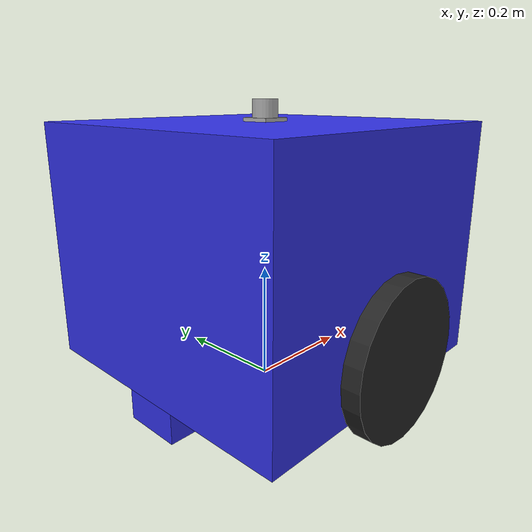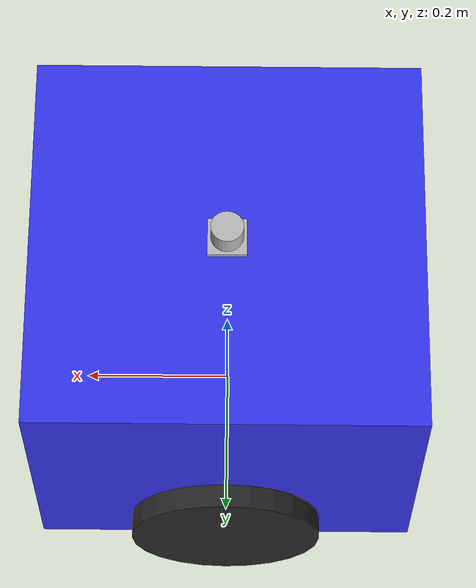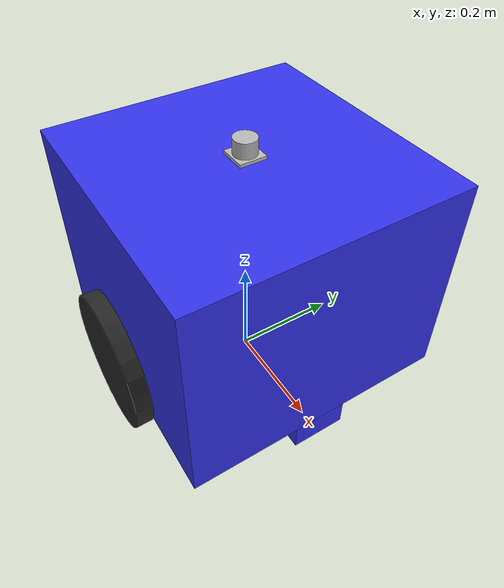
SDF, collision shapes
<?xml version='1.0'?>
<sdf version='1.4'>
  <model name="my_robot">
    <static>false</static>
    <link name='chassis'>
      <pose>0 0 .25 0 0 0</pose>

      <inertial>
        <mass>20</mass>
        <pose>0 0 -0.125 0 0 0</pose>
        <inertia>
          <ixx>0.8</ixx>
          <ixy>0</ixy>
          <ixz>0</ixz>
          <iyy>0.8</iyy>
          <iyz>0</iyz>
          <izz>0.8</izz>
        </inertia>
      </inertial>

      <collision name='collision'>
        <geometry>
          <box>
            <size>.5 .5 .4</size>
          </box>
        </geometry>
      </collision>

      <visual name='visual'>
        <geometry>
          <box>
            <size>.5 .5 .4</size>
          </box>
        </geometry>

        <material>
          <ambient>0.15 0.15 0.85 1</ambient>
          <diffuse>0.2 0.2 0.92 1</diffuse>
          <specular>0.25 0.25 0.97 1</specular>
          <emissive>0.01 0.01 0.01 1</emissive>
        </material>

      </visual>

      <collision name='caster_collision_1'>
        <pose>-0.2 0 -0.225 0 0 0</pose>
        <geometry>
          <box>
            <size>.1 .1 .05</size>
          </box>
        </geometry>

        <surface>
          <friction>
            <ode>
              <mu>0.0</mu>
              <mu2>0.0</mu2>
              <slip1>0.0</slip1>
              <slip2>0.0</slip2>
            </ode>
          </friction>
        </surface>
      </collision>

      <visual name='caster_visual_1'>
        <pose>-0.2 0 -0.2 0 0 0</pose>
        <geometry>
          <sphere>
            <radius>.05</radius>
          </sphere>
        </geometry>
        <material>
          <ambient>0.15 0.15 0.15 1</ambient>
          <diffuse>0.25 0.25 0.25 1</diffuse>
          <specular>0.99 0.99 0.99 1</specular>
          <emissive>0.2 0.2 0.2 1</emissive>
        </material>
      </visual>

      <collision name='caster_collision_2'>
        <pose>0.2 0 -0.225 0 0 0</pose>
        <geometry>
          <box>
            <size>.1 .1 .05</size>
          </box>
        </geometry>

        <surface>
          <friction>
            <ode>
              <mu>0.0</mu>
              <mu2>0.0</mu2>
              <slip1>0.0</slip1>
              <slip2>0.0</slip2>
            </ode>
          </friction>
        </surface>
      </collision>

      <visual name='caster_visual_2'>
        <pose>0.2 0 -0.2 0 0 0</pose>
        <geometry>
          <sphere>
            <radius>.05</radius>
          </sphere>
        </geometry>
        <material>
          <ambient>0.15 0.15 0.15 1</ambient>
          <diffuse>0.25 0.25 0.25 1</diffuse>
          <specular>0.99 0.99 0.99 1</specular>
          <emissive>0.2 0.2 0.2 1</emissive>
        </material>
      </visual>

    </link>

    <link name="left_wheel">
      <pose>0 0.27 0.125 0 1.5707 1.5707</pose>

      <collision name="collision">
        <geometry>
          <cylinder>
            <radius>.125</radius>
            <length>.03</length>
          </cylinder>
        </geometry>
        <surface>
          <friction>
            <ode>
              <mu>0.8</mu>
              <mu2>0.8</mu2>
              <slip1>0.0</slip1>
              <slip2>0.0</slip2>
            </ode>
          </friction>
        </surface>
      </collision>
      <visual name="visual">
        <geometry>
          <cylinder>
            <radius>.125</radius>
            <length>.03</length>
          </cylinder>
        </geometry>
        <material>
          <ambient>0.01 0.01 0.01 1</ambient>
          <diffuse>0.15 0.15 0.15 1</diffuse>
          <specular>0.99 0.99 0.99 1</specular>
          <emissive>0.01 0.01 0.01 1</emissive>
        </material>
      </visual>
    </link>

    <link name="right_wheel">
      <pose>0 -0.27 0.125 0 1.5707 1.5707</pose>

      <collision name="collision">
        <geometry>
          <cylinder>
            <radius>.125</radius>
            <length>.03</length>
          </cylinder>
        </geometry>
        <surface>
          <friction>
            <ode>
              <mu>0.8</mu>
              <mu2>0.8</mu2>
              <slip1>0.0</slip1>
              <slip2>0.0</slip2>
            </ode>
          </friction>
        </surface>
      </collision>
      <visual name="visual">
        <geometry>
          <cylinder>
            <radius>.125</radius>
            <length>.03</length>
          </cylinder>
        </geometry>
        <material>
          <ambient>0.01 0.01 0.01 1</ambient>
          <diffuse>0.15 0.15 0.15 1</diffuse>
          <specular>0.99 0.99 0.99 1</specular>
          <emissive>0.01 0.01 0.01 1</emissive>
        </material>
      </visual>
    </link>

    <joint type="revolute" name="left_wheel_hinge">
      <pose>0 0 0.0 0 0 0</pose>
      <child>left_wheel</child>
      <parent>chassis</parent>
      <axis>
        <xyz>0 1 0</xyz>
        <dynamics>
          <friction>1</friction>
        </dynamics>
      </axis>
    </joint>

    <joint type="revolute" name="right_wheel_hinge">
      <pose>0 0 0.0 0 0 0</pose>
      <child>right_wheel</child>
      <parent>chassis</parent>
      <axis>
        <xyz>0 1 0</xyz>
        <dynamics>
          <friction>1</friction>
        </dynamics>
      </axis>
    </joint>

    <include>
      <uri>model://lidar2d</uri>
      <pose>0. 0 0.45 0 0 0</pose>
    </include>
    <joint name="lidar2d_joint" type="fixed">
      <child>lidar2d::lidar_link</child>
      <parent>chassis</parent>
    </joint>

    <plugin name="differential_drive_controller" filename="libgazebo_ros_diff_drive.so">
      <alwaysOn>true</alwaysOn>
      <updateRate>20</updateRate>
      <leftJoint>left_wheel_hinge</leftJoint>
      <rightJoint>right_wheel_hinge</rightJoint>
      <wheelSeparation>0.54</wheelSeparation>
      <wheelDiameter>0.25</wheelDiameter>
      <torque>20</torque>
      <wheelTorque>20</wheelTorque>
      <commandTopic>cmd_vel</commandTopic>
      <odometryTopic>odom</odometryTopic>
      <odometryFrame>odom</odometryFrame>
      <robotBaseFrame>base_link</robotBaseFrame>
      <odometrySource>ENCODER</odometrySource>
    </plugin>

  </model>
</sdf>

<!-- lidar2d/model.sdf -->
<sdf version='1.5'>
  <model name="lidar2d">
    <pose>0 0 0.035 0 0 0</pose>
    <link name="lidar_link">
      <inertial>
        <mass>0.1</mass>
      </inertial>
      <visual name="visual">
        <geometry>
          <mesh>
            <uri>model://lidar2d/meshes/hokuyo.dae</uri>
          </mesh>
        </geometry>
      </visual>
      <collision name="collision-base">
        <pose>0 0 -0.0145 0 0 0</pose>
        <geometry>
          <box>
            <size>0.05 0.05 0.041</size>
          </box>
        </geometry>
      </collision>
      <collision name="collision-top">
        <pose>0 0 0.0205 0 0 0</pose>
        <geometry>
          <cylinder>
            <radius>0.021</radius>
            <length>0.029</length>
          </cylinder>
        </geometry>
      </collision>
      <sensor name="laser" type="ray">
        <pose>0.01 0 0.0175 0 -0 0</pose>
        <ray>
          <scan>
            <horizontal>
              <samples>720</samples>
              <resolution>1</resolution>
              <min_angle>0</min_angle>
              <max_angle>6.28318530718</max_angle>
            </horizontal>
          </scan>
          <range>
            <min>0.08</min>
            <max>10</max>
            <resolution>0.01</resolution>
          </range>
        </ray>
        <plugin name="laser" filename="libgazebo_ros_laser.so">
          <topicName>scan</topicName>
          <frameName>base_laser</frameName>
        </plugin>
        <always_on>1</always_on>
        <update_rate>10</update_rate>
        <visualize>false</visualize>
      </sensor>
    </link>
  </model>
</sdf>
